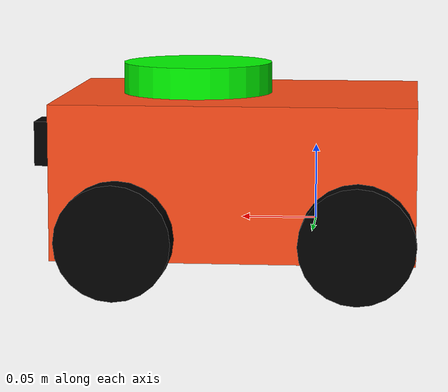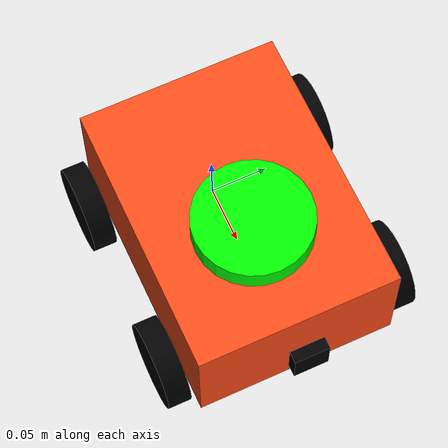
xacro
<?xml version="1.0"?>
<robot xmlns:xacro="http://www.ros.org/wiki/xacro"  name="robot">

    <xacro:include filename="robot_core_cobra.xacro"/>

    <!-- XACRO ARGUMENTS -->
    <xacro:arg name="use_ros2_control" default="true"/>
    <xacro:arg name="sim_mode" default="false"/>

    <!-- ROS2-CONTROL  -->
    <xacro:if value="$(arg use_ros2_control)">
        <xacro:include filename="ros2_control.xacro"/>
    </xacro:if>

     <!-- GAZEBO CONTROL FILE -->
    <xacro:unless value="$(arg use_ros2_control)">
        <xacro:include filename="gazebo_control.xacro"/>
    </xacro:unless>

    <!-- LIDAR  -->
    <xacro:include filename="lidar.xacro"/>

    <!-- CAMERA  -->
    <xacro:include filename="camera.xacro"/>

</robot>

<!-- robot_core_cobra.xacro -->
<robot xmlns:xacro="http://www.ros.org/wiki/xacro"  name="robot">

    <xacro:include filename="inertial_macros.xacro"/>

    <xacro:property name="chasis_length" value="0.335"/>
    <xacro:property name="chasis_width" value="0.262"/>
    <xacro:property name="chasis_height" value="0.138"/>
    <xacro:property name="chasis_mass" value="1.0"/>
    <xacro:property name="wheel_radius" value="0.033"/>
    <xacro:property name="wheel_thickness" value="0.026"/>
    <xacro:property name="wheel_mass" value="0.05"/>
    <xacro:property name="wheel_offset_x" value="0.226"/>
    <xacro:property name="wheel_offset_y" value="0.0.1485"/>
    <xacro:property name="wheel_offset_z" value="0.01"/>
    <xacro:property name="caster_wheel_radius" value="0.01"/>
    <xacro:property name="caster_wheel_mass" value="0.0.01"/>
    <xacro:property name="caster_wheel_offset_x" value="0.075"/>
    <xacro:property name="caster_wheel_offset_z" value="${wheel_offset_z - wheel_radius + caster_wheel_radius}"/>

    <material name="white">
        <color rgba="1 1 1 1"/>
    </material>

    <material name="orange">
        <color rgba="1 0.3 0.1 1"/>
    </material>

    <material name="blue">
        <color rgba="0.2 0.2 1 1"/>
    </material>

    <material name="red">
        <color rgba="1 0 0 1"/>
    </material>

    <material name="black">
        <color rgba="0 0 0 1"/>
    </material>

    <material name="green">
        <color rgba="0 1 0 1"/>
    </material>

    <!-- BASE LINK  -->
    <link name="base_link">

    </link>

    <!-- BASE FOOTPRINT LINK -->
    <joint name="base_footprint_joint" type="fixed">
        <parent link="base_link"/>
        <child link="base_footprint"/>
        <origin xyz="0 0 0" rpy="0 0 0"/>
    </joint>

    <link name="base_footprint">

    </link>

    <!-- CHASSIS LINK -->

    <joint name="chassis_joint" type="fixed">
        <parent link="base_link"/>
        <child link="chassis"/>
        <origin xyz="-0.1 0 0"/>
    </joint>

    <link name="chassis">
        <visual>
        <origin xyz="0.15 0 0.03424"/>
            <geometry>
                <box size="0.235 0.173 0.101"/>
            </geometry>
            <material name="orange"/>
        </visual>
        <collision>
        <origin xyz="0.15 0 0.03424"/>
            <geometry>
                <box size="0.235 0.173 0.101"/>
            </geometry>
            <material name="orange"/>
        </collision>
        <xacro:inertial_box mass="0.5" x="0.235" y="0.173" z="0.101">
            <origin xyz="0.15 0 0.03424" rpy="0 0 0"/>
        </xacro:inertial_box>
    </link>
    <gazebo reference="chassis">
        <material>Gazebo/Orange</material>
    </gazebo>

    <!-- REAR WHEELS -->
    <!-- LEFT WHEEL LINK -->
    <joint name="left_rear_wheel_joint" type="continuous">
        <parent link="base_link"/>
        <child link="left_rear_wheel"/>
        <origin xyz="-0.03075 0.1015 0" rpy="-${pi/2} 0 0"/>
        <axis xyz = "0 0 1"/>
    </joint>

    <link name="left_rear_wheel">
        <visual>
            <geometry>
                <cylinder radius="0.03725" length="0.02"/>
            </geometry>
            <material name="black"/>
        </visual>
        <collision>
            <geometry>
                 <sphere radius="0.03725" /> <!--length="0.04" for cylinder -->
            </geometry>
            <material name="black"/>
        </collision>
        <xacro:inertial_cylinder mass="0.1" length="0.02" radius="0.03725">
            <origin xyz="0 0 0" rpy="0 0 0"/>
        </xacro:inertial_cylinder>
    </link>
    <gazebo reference="left_rear_wheel">
        <material>Gazebo/Black</material>
    </gazebo>

    <!-- RIGHT WHEEL LINK -->
    <joint name="right_rear_wheel_joint" type="continuous">
        <parent link="base_link"/>
        <child link="right_rear_wheel"/>
        <origin xyz="-0.03075 -0.1015 0" rpy="${pi/2} 0 0"/>
        <axis xyz = "0 0 -1"/>
    </joint>

    <link name="right_rear_wheel">
        <visual>
            <geometry>
                <cylinder radius="0.03725" length="0.02"/>
            </geometry>
            <material name="black"/>
        </visual>
        <collision>
            <geometry>
                <sphere radius="0.03725"/> <!--length="0.04" for cylinder -->
            </geometry>
            <material name="black"/>
        </collision>
        <xacro:inertial_cylinder mass="0.1" length="0.02" radius="0.03725">
            <origin xyz="0 0 0" rpy="0 0 0"/>
        </xacro:inertial_cylinder>
    </link>
    <gazebo reference="right_rear_wheel">
        <material>Gazebo/Black</material>
    </gazebo>

    <!-- FRONT WHEEEELS  -->
    <!-- LEFT WHEEL  -->
    <joint name="left_front_wheel_joint" type="continuous">
        <parent link="base_link"/>
        <child link="left_front_wheel"/>
        <origin xyz="0.12325 0.1015 0" rpy="-${pi/2} 0 0"/>
        <axis xyz = "0 0 1"/>
    </joint>

    <link name="left_front_wheel">
        <visual>
            <geometry>
                <cylinder radius="0.03725" length="0.02"/>
            </geometry>
            <material name="black"/>
        </visual>
        <collision>
            <geometry>
                 <sphere radius="0.03725" /> <!--length="0.04" for cylinder -->
            </geometry>
            <material name="black"/>
        </collision>
        <xacro:inertial_cylinder mass="0.1" length="0.02" radius="0.03725">
            <origin xyz="0 0 0" rpy="0 0 0"/>
        </xacro:inertial_cylinder>
    </link>
    <gazebo reference="left_front_wheel">
        <material>Gazebo/Black</material>
        <mu1 value="0.001"/>
        <mu2 value="0.001"/>
    </gazebo>

    <!-- RIGHT WHEEL LINK -->
    <joint name="right_front_wheel_joint" type="continuous">
        <parent link="base_link"/>
        <child link="right_front_wheel"/>
        <origin xyz="0.12325 -0.1015 0" rpy="${pi/2} 0 0"/>
        <axis xyz = "0 0 -1"/>
    </joint>

    <link name="right_front_wheel">
        <visual>
            <geometry>
                <cylinder radius="0.03725" length="0.02"/>
            </geometry>
            <material name="black"/>
        </visual>
        <collision>
            <geometry>
                <sphere radius="0.03725"/> <!--length="0.04" for cylinder -->
            </geometry>
            <material name="black"/>
        </collision>
        <xacro:inertial_cylinder mass="0.1" length="0.02" radius="0.03725">
            <origin xyz="0 0 0" rpy="0 0 0"/>
        </xacro:inertial_cylinder>
    </link>
    <gazebo reference="right_front_wheel">
        <material>Gazebo/Black</material>
        <mu1 value="0.001"/>
        <mu2 value="0.001"/>
    </gazebo>

</robot>

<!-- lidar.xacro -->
<robot xmlns:xacro="http://www.ros.org/wiki/xacro"  name="robot">

    <joint name="laser_joint" type="fixed">
        <parent link="chassis"/>
        <child link="laser_frame"/>

        <!-- For four wheeled robot -->
        <origin xyz="0.18 0 0.08524" rpy="0 0 0"/>

        <!-- For two wheeled robot -->

    </joint>
    <link name="laser_frame">
        <visual>
            <geometry>
                <cylinder radius="0.05" length="0.04"/>
            </geometry>
            <material name="green"/>
        </visual>
        <collision>
            <geometry>
                <cylinder radius="0.05" length="0.04"/>
            </geometry>
        </collision>
        <xacro:inertial_cylinder mass="0.1" length="0.04" radius="0.05">
            <origin xyz="0 0 0" rpy="0 0 0"/>
        </xacro:inertial_cylinder>
    </link>

    <!-- GAZEBO tAG FOR LIDAR SIMULATION -->
    <gazebo reference="laser_frame">
        <material>Gazebo/Green</material>
        <sensor name="laser" type="ray">
            <pose>0 0 0 0 0 0 </pose>
            <visualize>false</visualize>
            <update_rate>10.0</update_rate>
            <ray>
                <scan>
                    <horizontal>
                        <samples>360</samples>
                        <resolution>1</resolution>
                        <min_angle>-3.14</min_angle>
                        <max_angle>3.14</max_angle>
                    </horizontal>
                </scan>
                <range>
                    <min>0.3</min>
                    <max>12</max>
                    <resolution>0.01</resolution>
                </range>
            </ray>
            <plugin name="laser_controller" filename="libgazebo_ros_ray_sensor.so">
                <ros>
                    <argument>~/out:=scan</argument>
                </ros>
                <output_type>sensor_msgs/LaserScan</output_type>
                <frame_name>laser_frame</frame_name>
            </plugin>
        </sensor>
    </gazebo>
</robot>

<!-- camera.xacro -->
<robot xmlns:xacro="http://www.ros.org/wiki/xacro"  name="robot">

    <joint name="camera_joint" type="fixed">
        <parent link="chassis"/>
        <child link="camera_link"/>

        <!-- For four wheeled robot -->
        <origin xyz="0.285 0 0.05" rpy="0 0 0"/>

        <!-- For two wheeled robot -->

    </joint>
    <link name="camera_link">
        <visual>
            <geometry>
                <box size="0.010 0.03 0.03"/>
            </geometry>
            <material name="black"/>
        </visual>
    </link>

    <joint name="camera_optical_join" type="fixed">
        <parent link="camera_link"/>
        <child link="camera_link_optical"/>
        <origin xyz="0 0 0" rpy="${-pi/2} 0 ${-pi/2}"/>
    </joint>
    <link name="camera_link_optical"></link>

    <!-- GAZEBO tAG FOR LIDAR SIMULATION -->
    <gazebo reference="camera_link">
        <material>Gazebo/Red</material>
        <sensor name="camera" type="camera">
            <pose>0 0 0 0 0 0 </pose>
            <visualize>true</visualize>
            <update_rate>10.0</update_rate>
            <camera>
                <horizontal_fov>1.089</horizontal_fov>
                <image>
                    <format>R8G8B8</format>
                    <width>640</width>
                    <height>480</height>
                </image>
                <clip>
                    <near>0.5</near>
                    <far>8</far>
                </clip>
            </camera>
            <plugin name="camera_controller" filename="libgazebo_ros_camera.so">
                <frame_name>camera_link_optical</frame_name>
            </plugin>
        </sensor>
    </gazebo>
</robot>
